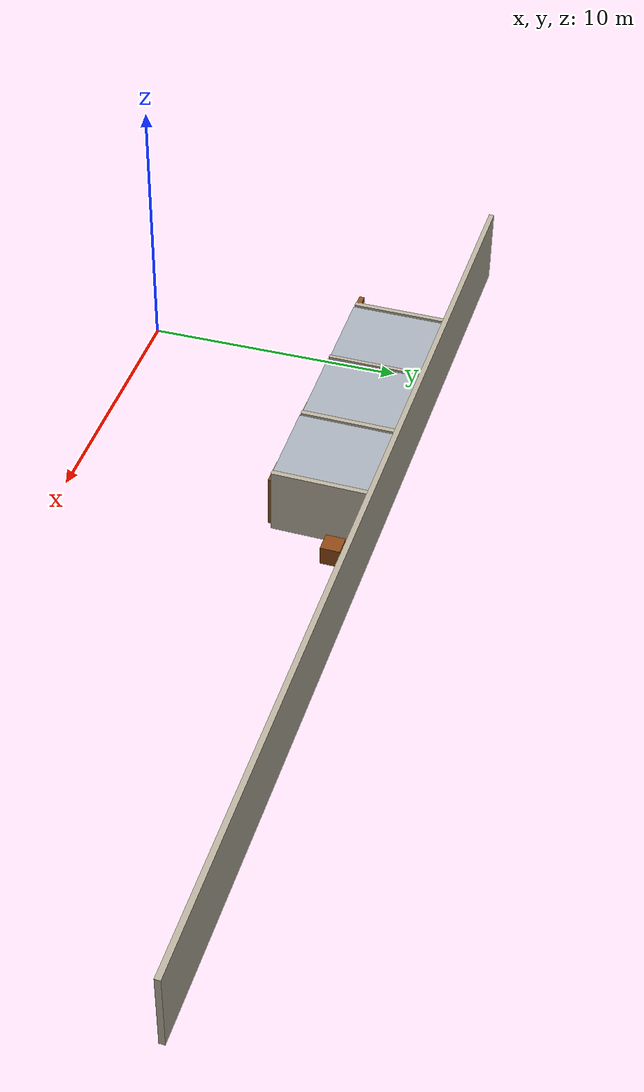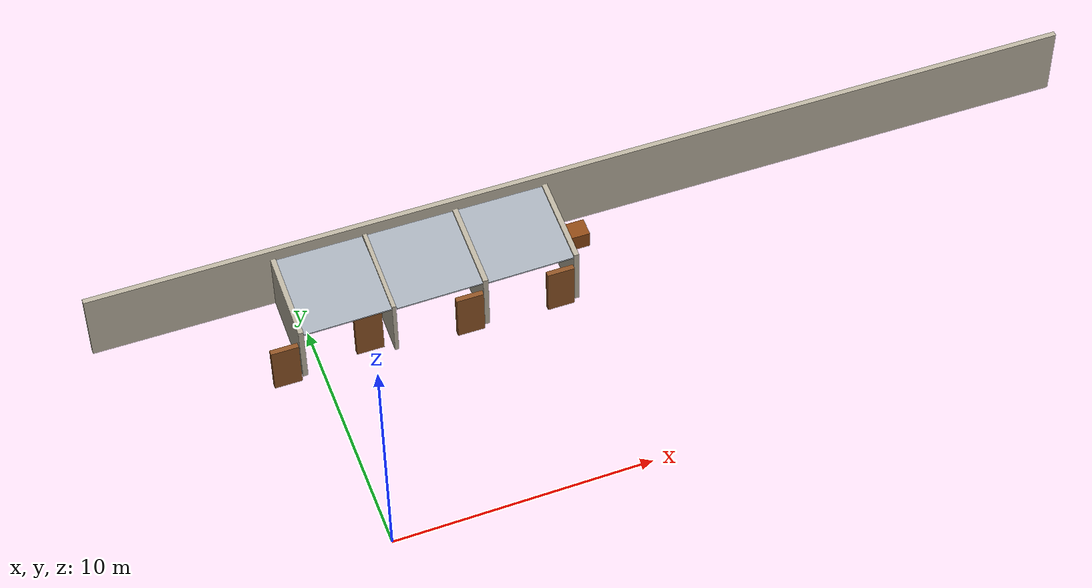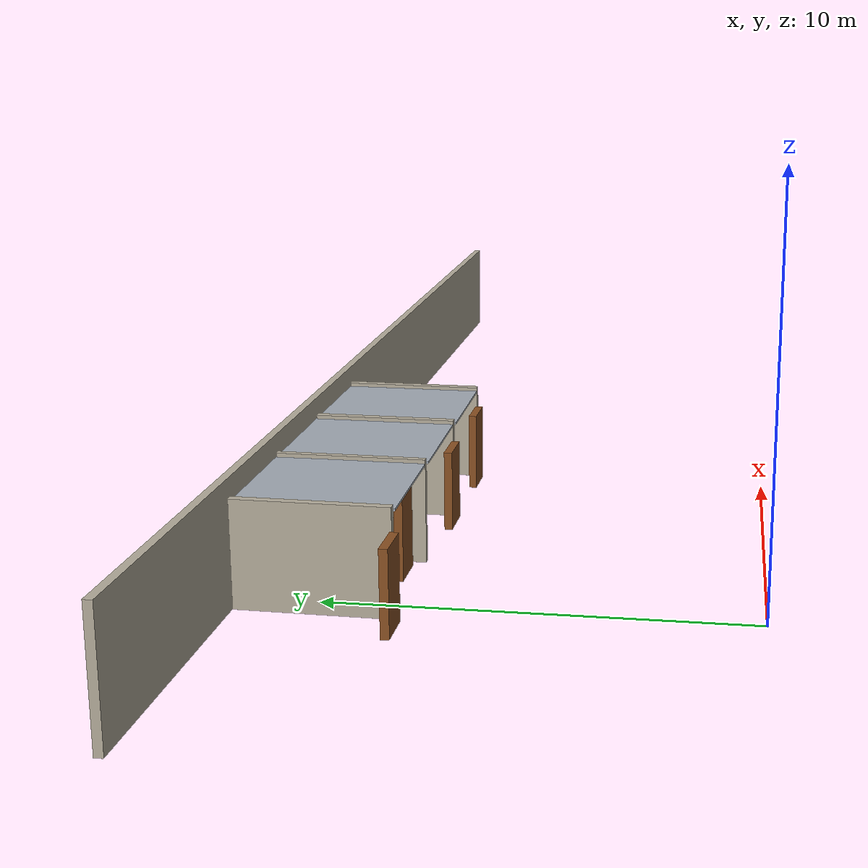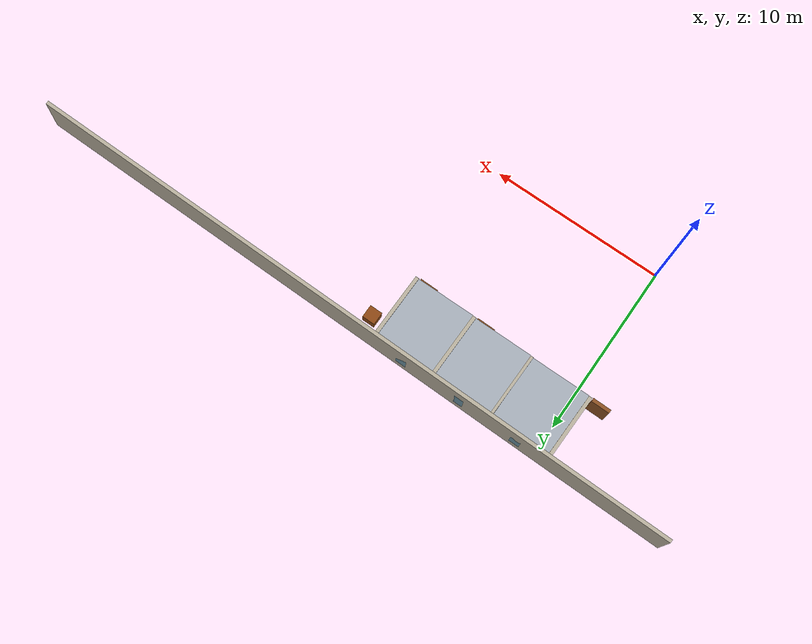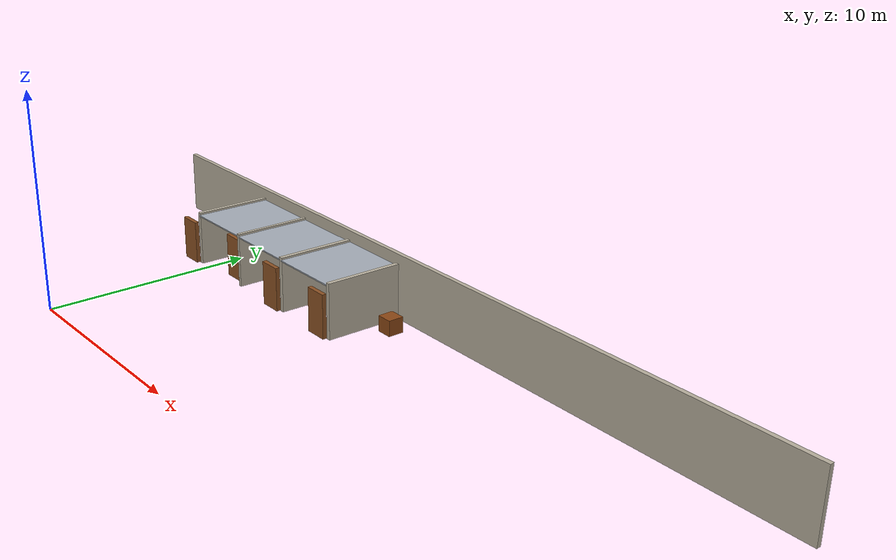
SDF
<sdf version="1.10">
 <world name="deltaseek_ifc_nominal_ers_d20_s1">
  <model name="ifc_0KvanlNQrCphrCb4tAxX_q_ad37518d">
   <static>true</static>
   <pose>-0.625773948 9.9913846 1.2954 0 0 -1.5899748</pose>
   <link name="link">
    <collision name="collision"><geometry><box><size>3.67928181 0.2032 2.5908</size></box></geometry></collision>
    <visual name="visual">
     <geometry><box><size>3.67928181 0.2032 2.5908</size></box></geometry>
     <material><ambient>0.72 0.69 0.62 1</ambient><diffuse>0.72 0.69 0.62 1</diffuse></material>
    </visual>
   </link>
  </model>
  <model name="ifc_0KvanlNQrCphrCb4tAxXvC_0f6967c3">
   <static>true</static>
   <pose>10.0889975 9.84882023 1.2954 0 0 -1.5899748</pose>
   <link name="link">
    <collision name="collision"><geometry><box><size>3.65810647 0.2032 2.5908</size></box></geometry></collision>
    <visual name="visual">
     <geometry><box><size>3.65810647 0.2032 2.5908</size></box></geometry>
     <material><ambient>0.72 0.69 0.62 1</ambient><diffuse>0.72 0.69 0.62 1</diffuse></material>
    </visual>
   </link>
  </model>
  <model name="ifc_0KvanlNQrCphrCb4tAxXwK_92c30903">
   <static>true</static>
   <pose>6.51392002 9.89638808 1.2954 0 0 -1.5899748</pose>
   <link name="link">
    <collision name="collision"><geometry><box><size>3.66517181 0.2032 2.5908</size></box></geometry></collision>
    <visual name="visual">
     <geometry><box><size>3.66517181 0.2032 2.5908</size></box></geometry>
     <material><ambient>0.72 0.69 0.62 1</ambient><diffuse>0.72 0.69 0.62 1</diffuse></material>
    </visual>
   </link>
  </model>
  <model name="ifc_0KvanlNQrCphrCb4tAxXz4_a0839819">
   <static>true</static>
   <pose>2.94696815 9.94384782 1.2954 0 0 -1.5899748</pose>
   <link name="link">
    <collision name="collision">
     <geometry><box><size>3.67222109 0.159516064 2.5908</size></box></geometry>
    </collision>
    <visual name="visual">
     <geometry><box><size>3.67222109 0.159516064 2.5908</size></box></geometry>
     <material><ambient>0.72 0.69 0.62 1</ambient><diffuse>0.72 0.69 0.62 1</diffuse></material>
    </visual>
   </link>
  </model>
  <model name="ifc_1abtvTofT8EB1v01F0Dl5g_79495fe9">
   <static>true</static>
   <pose>11.816364 11.7544621 1.524 0 0 3.12729999</pose>
   <link name="link">
    <collision name="collision"><geometry><box><size>39.1999148 0.2032 3.048</size></box></geometry></collision>
    <visual name="visual">
     <geometry><box><size>39.1999148 0.2032 3.048</size></box></geometry>
     <material><ambient>0.72 0.69 0.62 1</ambient><diffuse>0.72 0.69 0.62 1</diffuse></material>
    </visual>
   </link>
  </model>
  <model name="ifc_1s7WttW8LF3wo3GFHzG40a_beeeece1">
   <static>true</static>
   <pose>4.78612365 11.8549497 1.33985 0 0 -0.014292658</pose>
   <link name="link">
    <collision name="collision"><geometry><box><size>0.6096 0.2032 1.3716</size></box></geometry></collision>
    <visual name="visual">
     <geometry><box><size>0.6096 0.2032 1.3716</size></box></geometry>
     <material><ambient>0.25 0.55 0.72 0.55</ambient><diffuse>0.25 0.55 0.72 0.55</diffuse></material>
    </visual>
   </link>
  </model>
  <model name="ifc_1s7WttW8LF3wo3GFHzG41K_e48ffc54">
   <static>true</static>
   <pose>1.23048685 11.9057727 1.33985 0 0 -0.014292658</pose>
   <link name="link">
    <collision name="collision"><geometry><box><size>0.6096 0.2032 1.3716</size></box></geometry></collision>
    <visual name="visual">
     <geometry><box><size>0.6096 0.2032 1.3716</size></box></geometry>
     <material><ambient>0.25 0.55 0.72 0.55</ambient><diffuse>0.25 0.55 0.72 0.55</diffuse></material>
    </visual>
   </link>
  </model>
  <model name="ifc_1s7WttW8LF3wo3GFHzG4UF_ce34c1a1">
   <static>true</static>
   <pose>8.36715785 11.8037637 1.33985 0 0 -0.014292658</pose>
   <link name="link">
    <collision name="collision"><geometry><box><size>0.6096 0.2032 1.3716</size></box></geometry></collision>
    <visual name="visual">
     <geometry><box><size>0.6096 0.2032 1.3716</size></box></geometry>
     <material><ambient>0.25 0.55 0.72 0.55</ambient><diffuse>0.25 0.55 0.72 0.55</diffuse></material>
    </visual>
   </link>
  </model>
  <model name="ifc_1s7WttW8LF3wo3GFHzG7HX_6bbd5e97">
   <static>true</static>
   <pose>1.1605671 9.96938106 2.466975 0 0 0</pose>
   <link name="link">
    <collision name="collision">
     <geometry><box><size>3.44002466 3.71871543 0.05715</size></box></geometry>
    </collision>
    <visual name="visual">
     <geometry><box><size>3.44002466 3.71871543 0.05715</size></box></geometry>
     <material><ambient>0.65 0.68 0.72 1</ambient><diffuse>0.65 0.68 0.72 1</diffuse></material>
    </visual>
   </link>
  </model>
  <model name="ifc_1s7WttW8LF3wo3GFHzG7Hn_6c58f50c">
   <static>true</static>
   <pose>4.73041413 9.92187994 2.466975 0 0 0</pose>
   <link name="link">
    <collision name="collision">
     <geometry><box><size>3.43409914 3.71158468 0.05715</size></box></geometry>
    </collision>
    <visual name="visual">
     <geometry><box><size>3.43409914 3.71158468 0.05715</size></box></geometry>
     <material><ambient>0.65 0.68 0.72 1</ambient><diffuse>0.65 0.68 0.72 1</diffuse></material>
    </visual>
   </link>
  </model>
  <model name="ifc_1s7WttW8LF3wo3GFHzG7Hv_261e896b">
   <static>true</static>
   <pose>8.30142874 9.87437016 2.466975 0 0 0</pose>
   <link name="link">
    <collision name="collision">
     <geometry><box><size>3.44208943 3.70463679 0.05715</size></box></geometry>
    </collision>
    <visual name="visual">
     <geometry><box><size>3.44208943 3.70463679 0.05715</size></box></geometry>
     <material><ambient>0.65 0.68 0.72 1</ambient><diffuse>0.65 0.68 0.72 1</diffuse></material>
    </visual>
   </link>
  </model>
  <model name="ifc_38qgW_sXr868lESAj2QWjv_149cb55d">
   <static>true</static>
   <pose>5.79845577 7.99701027 1.0287 0 0 -0.012316592</pose>
   <link name="link">
    <collision name="collision"><geometry><box><size>1.0668 0.2032 2.0574</size></box></geometry></collision>
    <visual name="visual">
     <geometry><box><size>1.0668 0.2032 2.0574</size></box></geometry>
     <material><ambient>0.55 0.32 0.14 1</ambient><diffuse>0.55 0.32 0.14 1</diffuse></material>
    </visual>
   </link>
  </model>
  <model name="ifc_38qgW_sXr868lESAj2QWkz_54f4bc74">
   <static>true</static>
   <pose>9.37958413 7.95290074 1.0287 0 0 -0.012316592</pose>
   <link name="link">
    <collision name="collision"><geometry><box><size>1.0668 0.2032 2.0574</size></box></geometry></collision>
    <visual name="visual">
     <geometry><box><size>1.0668 0.2032 2.0574</size></box></geometry>
     <material><ambient>0.55 0.32 0.14 1</ambient><diffuse>0.55 0.32 0.14 1</diffuse></material>
    </visual>
   </link>
  </model>
  <model name="ifc_38qgW_sXr868lESAj2QZIc_7765df53">
   <static>true</static>
   <pose>-1.36180215 8.08520471 1.0287 0 0 -0.012316592</pose>
   <link name="link">
    <collision name="collision"><geometry><box><size>1.0668 0.2032 2.0574</size></box></geometry></collision>
    <visual name="visual">
     <geometry><box><size>1.0668 0.2032 2.0574</size></box></geometry>
     <material><ambient>0.55 0.32 0.14 1</ambient><diffuse>0.55 0.32 0.14 1</diffuse></material>
    </visual>
   </link>
  </model>
  <model name="ifc_38qgW_sXr868lESAj2QZJZ_4a06ad73">
   <static>true</static>
   <pose>1.97142242 8.4809448 1.053859 0 0 -0.012316592</pose>
   <link name="link">
    <collision name="collision"><geometry><box><size>1.0668 0.2032 2.0574</size></box></geometry></collision>
    <visual name="visual">
     <geometry><box><size>1.0668 0.2032 2.0574</size></box></geometry>
     <material><ambient>0.55 0.32 0.14 1</ambient><diffuse>0.55 0.32 0.14 1</diffuse></material>
    </visual>
   </link>
  </model>
  <model name="ifc_unexpected_002_a73eb6de">
   <static>true</static>
   <pose>11.062245 10.596193 0.368 0 0 1.559781</pose>
   <link name="link">
    <collision name="collision"><geometry><box><size>0.736 0.736 0.736</size></box></geometry></collision>
    <visual name="visual">
     <geometry><box><size>0.736 0.736 0.736</size></box></geometry>
     <material><ambient>0.55 0.28 0.08 1</ambient><diffuse>0.55 0.28 0.08 1</diffuse></material>
    </visual>
   </link>
  </model>
  <model name="ifc_unexpected_003_0df65c41">
   <static>true</static>
   <pose>3.496203 10.988706 0.2265 0 0 0.341685</pose>
   <link name="link">
    <collision name="collision"><geometry><box><size>0.453 0.453 0.453</size></box></geometry></collision>
    <visual name="visual">
     <geometry><box><size>0.453 0.453 0.453</size></box></geometry>
     <material><ambient>0.55 0.28 0.08 1</ambient><diffuse>0.55 0.28 0.08 1</diffuse></material>
    </visual>
   </link>
  </model>
 </world>
</sdf>
